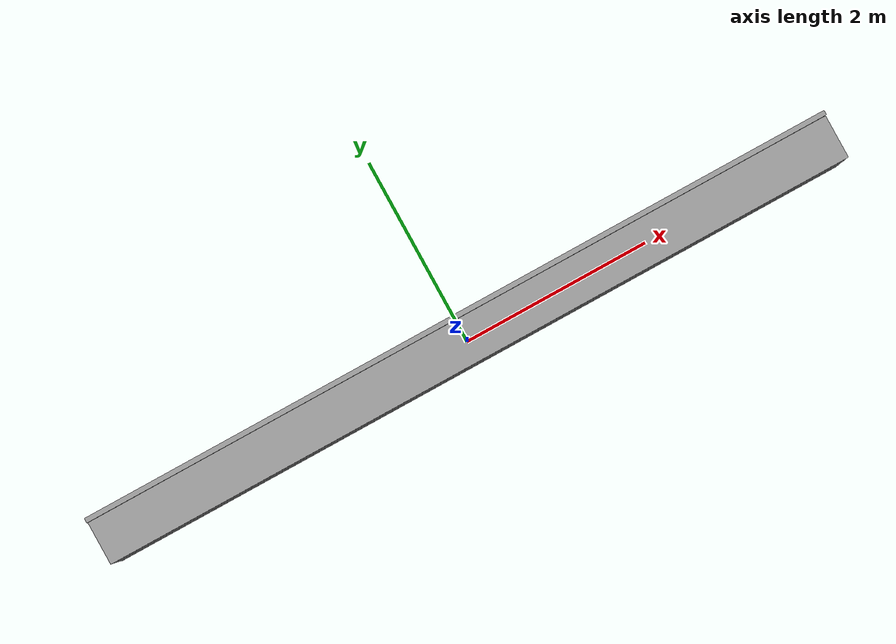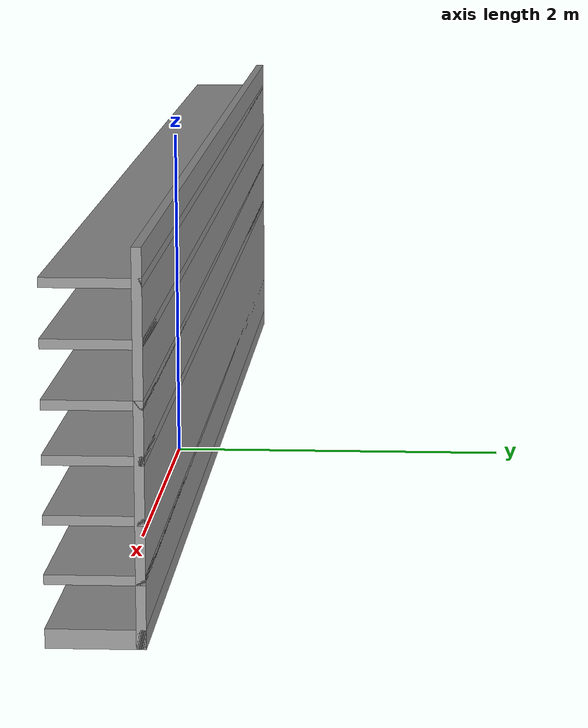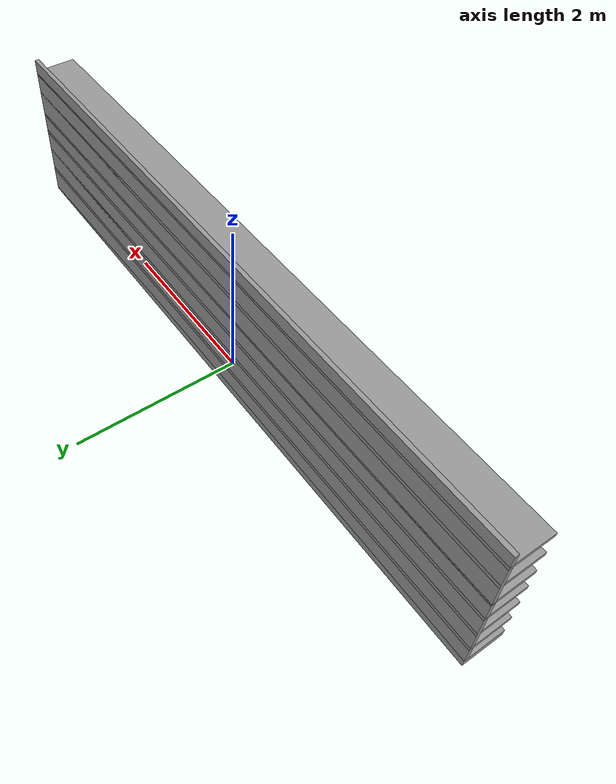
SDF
<?xml version='1.0'?>
<sdf version="1.6">
  <model name="8x_shelving_8">
    <static>true</static>

    <link name="base">
      <pose>0 0 0.05 0 0 0</pose>
      <collision name="collision">
        <geometry>
          <box>
            <size>8 0.5 0.10</size>
          </box>
        </geometry>
      </collision>
      <visual name="visual">
        <geometry>
          <box>
            <size>8 0.5 0.10</size>
          </box>
        </geometry>
        <material>
          <script>
            <uri>file://media/materials/scripts/gazebo.material</uri>
            <name>Gazebo/Grey</name>
          </script>
          <ambient>0.8 0.8 0.8 1</ambient>
        </material>
      </visual>
    </link>

    <link name="back">
      <pose>0 0.225 1 0 0 0</pose>
      <collision name="collision">
        <geometry>
          <box>
            <size>8 0.05 2</size>
          </box>
        </geometry>
      </collision>
      <visual name="visual">
        <geometry>
          <box>
            <size>8 0.05 2</size>
          </box>
        </geometry>
        <material>
          <script>
            <uri>file://media/materials/scripts/gazebo.material</uri>
            <name>Gazebo/Grey</name>
          </script>
          <ambient>0.8 0.8 0.8 1</ambient>
        </material>
      </visual>
    </link>

    <link name="shelf_1">
      <pose>0 0 0.35 0 0 0</pose>
      <collision name="collision">
        <geometry>
          <box>
            <size>8 0.5 0.05</size>
          </box>
        </geometry>
      </collision>
      <visual name="visual">
        <geometry>
          <box>
            <size>8 0.5 0.05</size>
          </box>
        </geometry>
        <material>
          <script>
            <uri>file://media/materials/scripts/gazebo.material</uri>
            <name>Gazebo/Grey</name>
          </script>
          <ambient>0.8 0.8 0.8 1</ambient>
        </material>
      </visual>
    </link>

    <link name="shelf_2">
      <pose>0 0 0.65 0 0 0</pose>
      <collision name="collision">
        <geometry>
          <box>
            <size>8 0.5 0.05</size>
          </box>
        </geometry>
      </collision>
      <visual name="visual">
        <geometry>
          <box>
            <size>8 0.5 0.05</size>
          </box>
        </geometry>
        <material>
          <script>
            <uri>file://media/materials/scripts/gazebo.material</uri>
            <name>Gazebo/Grey</name>
          </script>
          <ambient>0.8 0.8 0.8 1</ambient>
        </material>
      </visual>
    </link>

    <link name="shelf_3">
      <pose>0 0 0.95 0 0 0</pose>
      <collision name="collision">
        <geometry>
          <box>
            <size>8 0.5 0.05</size>
          </box>
        </geometry>
      </collision>
      <visual name="visual">
        <geometry>
          <box>
            <size>8 0.5 0.05</size>
          </box>
        </geometry>
        <material>
          <script>
            <uri>file://media/materials/scripts/gazebo.material</uri>
            <name>Gazebo/Grey</name>
          </script>
          <ambient>0.8 0.8 0.8 1</ambient>
        </material>
      </visual>
    </link>

    <link name="shelf_4">
      <pose>0 0 1.225 0 0 0</pose>
      <collision name="collision">
        <geometry>
          <box>
            <size>8 0.5 0.05</size>
          </box>
        </geometry>
      </collision>
      <visual name="visual">
        <geometry>
          <box>
            <size>8 0.5 0.05</size>
          </box>
        </geometry>
        <material>
          <script>
            <uri>file://media/materials/scripts/gazebo.material</uri>
            <name>Gazebo/Grey</name>
          </script>
          <ambient>0.8 0.8 0.8 1</ambient>
        </material>
      </visual>
    </link>

    <link name="shelf_5">
      <pose>0 0 1.525 0 0 0</pose>
      <collision name="collision">
        <geometry>
          <box>
            <size>8 0.5 0.05</size>
          </box>
        </geometry>
      </collision>
      <visual name="visual">
        <geometry>
          <box>
            <size>8 0.5 0.05</size>
          </box>
        </geometry>
        <material>
          <script>
            <uri>file://media/materials/scripts/gazebo.material</uri>
            <name>Gazebo/Grey</name>
          </script>
          <ambient>0.8 0.8 0.8 1</ambient>
        </material>
      </visual>
    </link>

    <link name="shelf_6">
      <pose>0 0 1.825 0 0 0</pose>
      <collision name="collision">
        <geometry>
          <box>
            <size>8 0.5 0.05</size>
          </box>
        </geometry>
      </collision>
      <visual name="visual">
        <geometry>
          <box>
            <size>8 0.5 0.05</size>
          </box>
        </geometry>
        <material>
          <script>
            <uri>file://media/materials/scripts/gazebo.material</uri>
            <name>Gazebo/Grey</name>
          </script>
          <ambient>0.8 0.8 0.8 1</ambient>
        </material>
      </visual>
    </link>
  </model>
</sdf>
